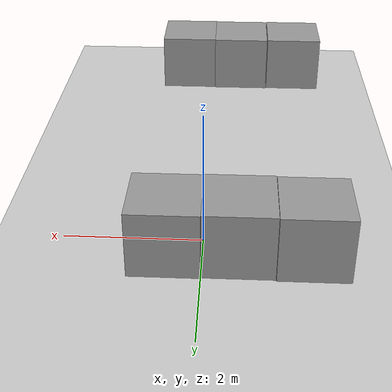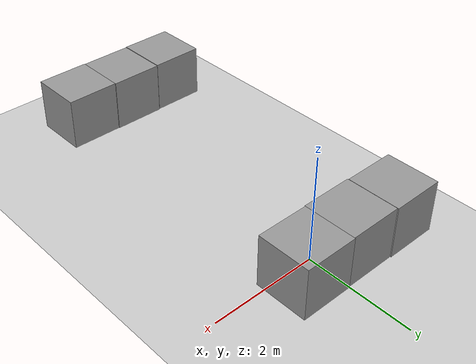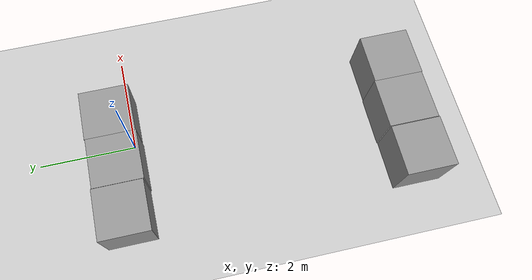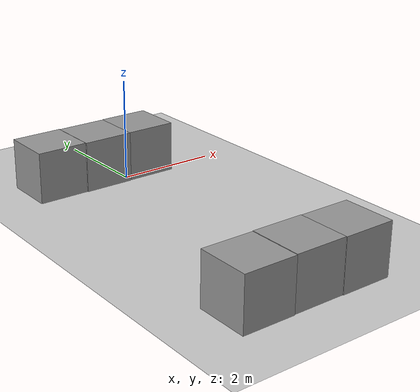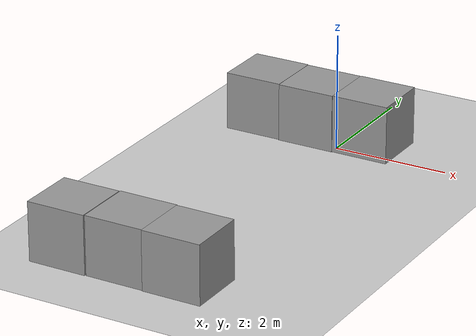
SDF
<sdf version="1.6">
 <world name="default">
  <light name="sun" type="directional">
   <pose>0 0 10 0 -0 0</pose>
   <diffuse>0.8 0.8 0.8 1</diffuse>
   <specular>0.1 0.1 0.1 1</specular>
   <attenuation>
    <range>1000</range>
    <constant>0.9</constant>
    <linear>0.01</linear>
    <quadratic>0.001</quadratic>
   </attenuation>
   <direction>-0.5 0.5 -1</direction>
  </light>
  <model name="ground_plane">
   <static>1</static>
   <link name="link">
    <collision name="collision">
     <geometry><plane><normal>0 0 1</normal><size>100 100</size></plane></geometry>
     <surface><friction><ode><mu>100</mu><mu2>50</mu2></ode></friction></surface>
    </collision>
    <visual name="visual">
     <cast_shadows>0</cast_shadows>
     <geometry><plane><normal>0 0 1</normal><size>100 100</size></plane></geometry>
     <material>
      <script><uri>file://media/materials/scripts/gazebo.material</uri><name>Gazebo/Grey</name></script>
     </material>
    </visual>
   </link>
  </model>
  <gravity>0 0 -9.8</gravity>
  <magnetic_field>6e-06 2.3e-05 -4.2e-05</magnetic_field>
  <atmosphere type="adiabatic"/>
  <physics name="default_physics" default="0" type="ode">
   <max_step_size>0.001</max_step_size>
   <real_time_factor>1</real_time_factor>
   <real_time_update_rate>1000</real_time_update_rate>
  </physics>
  <scene><ambient>0.4 0.4 0.4 1</ambient><background>0.7 0.7 0.7 1</background><shadows>1</shadows></scene>
  <spherical_coordinates>
   <surface_model>EARTH_WGS84</surface_model>
   <latitude_deg>0</latitude_deg>
   <longitude_deg>0</longitude_deg>
   <elevation>0</elevation>
   <heading_deg>0</heading_deg>
  </spherical_coordinates>
  <model name="unit_box_0">
   <pose>-0.50531 -5.53387 0.5 0 0 -0.000162</pose>
   <link name="link">
    <inertial>
     <mass>1</mass>
     <inertia>
      <ixx>0.166667</ixx>
      <ixy>0</ixy>
      <ixz>0</ixz>
      <iyy>0.166667</iyy>
      <iyz>0</iyz>
      <izz>0.166667</izz>
     </inertia>
    </inertial>
    <collision name="collision"><geometry><box><size>1 1 1</size></box></geometry></collision>
    <visual name="visual">
     <geometry><box><size>1 1 1</size></box></geometry>
     <material>
      <script><name>Gazebo/Grey</name><uri>file://media/materials/scripts/gazebo.material</uri></script>
     </material>
    </visual>
   </link>
  </model>
  <model name="unit_box_1">
   <pose>0.494689 -5.54717 0.5 0 0 -0.000164</pose>
   <link name="link">
    <inertial>
     <mass>1</mass>
     <inertia>
      <ixx>0.166667</ixx>
      <ixy>0</ixy>
      <ixz>0</ixz>
      <iyy>0.166667</iyy>
      <iyz>0</iyz>
      <izz>0.166667</izz>
     </inertia>
    </inertial>
    <collision name="collision"><geometry><box><size>1 1 1</size></box></geometry></collision>
    <visual name="visual">
     <geometry><box><size>1 1 1</size></box></geometry>
     <material>
      <script><name>Gazebo/Grey</name><uri>file://media/materials/scripts/gazebo.material</uri></script>
     </material>
    </visual>
   </link>
  </model>
  <model name="unit_box_2">
   <pose>-1.51762 -5.54772 0.5 0 -0 0</pose>
   <link name="link">
    <inertial>
     <mass>1</mass>
     <inertia>
      <ixx>0.166667</ixx>
      <ixy>0</ixy>
      <ixz>0</ixz>
      <iyy>0.166667</iyy>
      <iyz>0</iyz>
      <izz>0.166667</izz>
     </inertia>
    </inertial>
    <collision name="collision"><geometry><box><size>1 1 1</size></box></geometry></collision>
    <visual name="visual">
     <geometry><box><size>1 1 1</size></box></geometry>
     <material>
      <script><name>Gazebo/Grey</name><uri>file://media/materials/scripts/gazebo.material</uri></script>
     </material>
    </visual>
   </link>
  </model>
  <model name="unit_box_3">
   <pose>-1.50424 0.339407 0.5 0 -0 0</pose>
   <link name="link">
    <inertial>
     <mass>1</mass>
     <inertia>
      <ixx>0.166667</ixx>
      <ixy>0</ixy>
      <ixz>0</ixz>
      <iyy>0.166667</iyy>
      <iyz>0</iyz>
      <izz>0.166667</izz>
     </inertia>
    </inertial>
    <collision name="collision"><geometry><box><size>1 1 1</size></box></geometry></collision>
    <visual name="visual">
     <geometry><box><size>1 1 1</size></box></geometry>
     <material>
      <script><name>Gazebo/Grey</name><uri>file://media/materials/scripts/gazebo.material</uri></script>
     </material>
    </visual>
   </link>
  </model>
  <model name="unit_box_4">
   <pose>-0.499835 0.32231 0.5 0 -0 0.000123</pose>
   <link name="link">
    <inertial>
     <mass>1</mass>
     <inertia>
      <ixx>0.166667</ixx>
      <ixy>0</ixy>
      <ixz>0</ixz>
      <iyy>0.166667</iyy>
      <iyz>0</iyz>
      <izz>0.166667</izz>
     </inertia>
    </inertial>
    <collision name="collision"><geometry><box><size>1 1 1</size></box></geometry></collision>
    <visual name="visual">
     <geometry><box><size>1 1 1</size></box></geometry>
     <material>
      <script><name>Gazebo/Grey</name><uri>file://media/materials/scripts/gazebo.material</uri></script>
     </material>
    </visual>
   </link>
  </model>
  <model name="unit_box_5">
   <pose>0.500164 0.335023 0.5 0 -0 0.000125</pose>
   <link name="link">
    <inertial>
     <mass>1</mass>
     <inertia>
      <ixx>0.166667</ixx>
      <ixy>0</ixy>
      <ixz>0</ixz>
      <iyy>0.166667</iyy>
      <iyz>0</iyz>
      <izz>0.166667</izz>
     </inertia>
    </inertial>
    <collision name="collision"><geometry><box><size>1 1 1</size></box></geometry></collision>
    <visual name="visual">
     <geometry><box><size>1 1 1</size></box></geometry>
     <material>
      <script><name>Gazebo/Grey</name><uri>file://media/materials/scripts/gazebo.material</uri></script>
     </material>
    </visual>
   </link>
  </model>
 </world>
</sdf>
